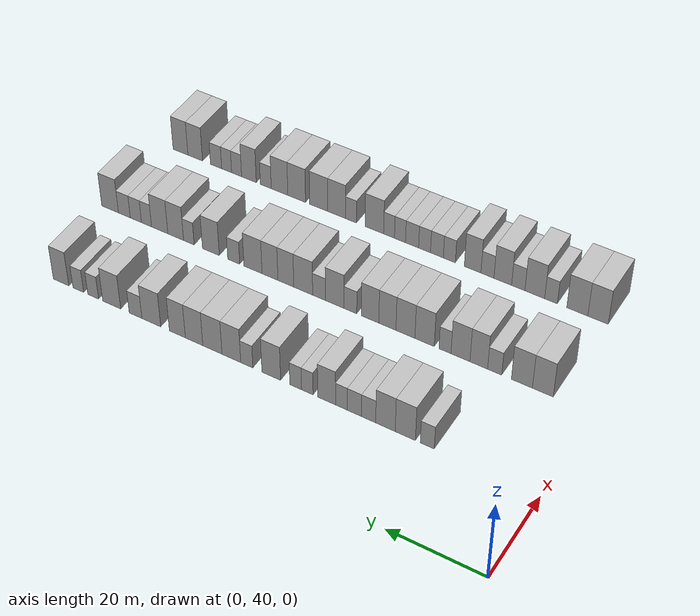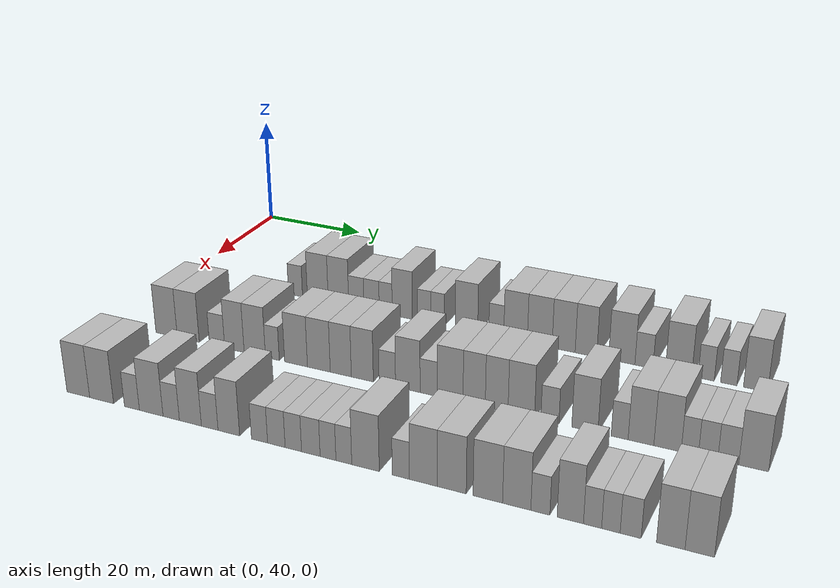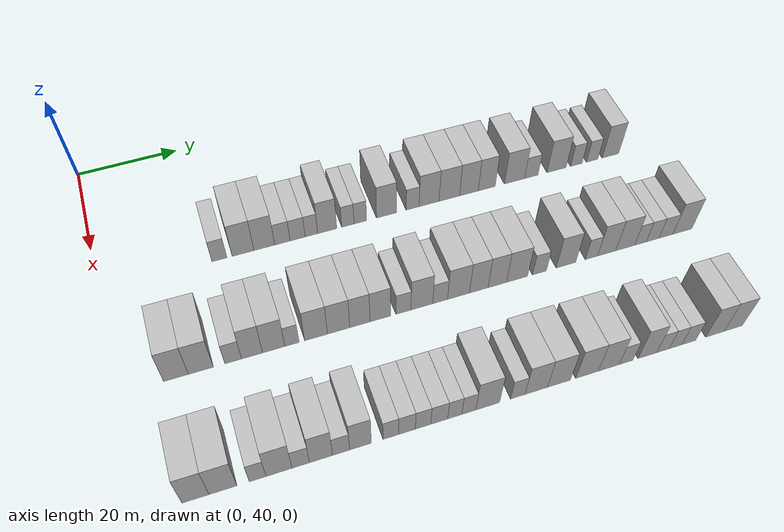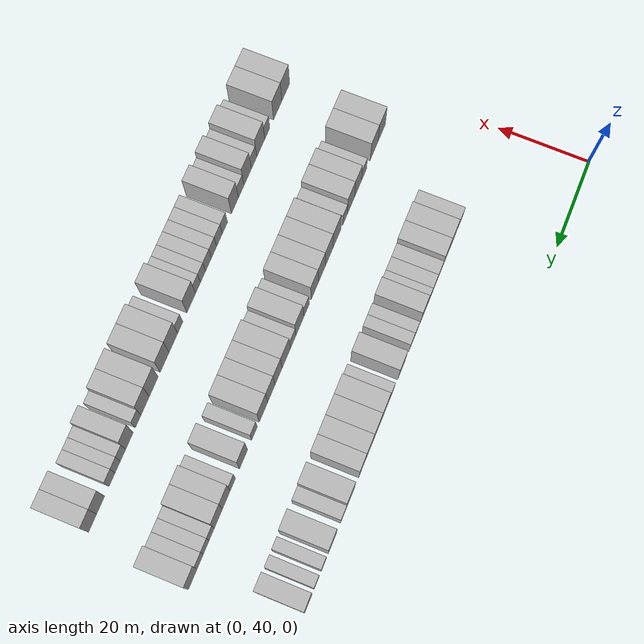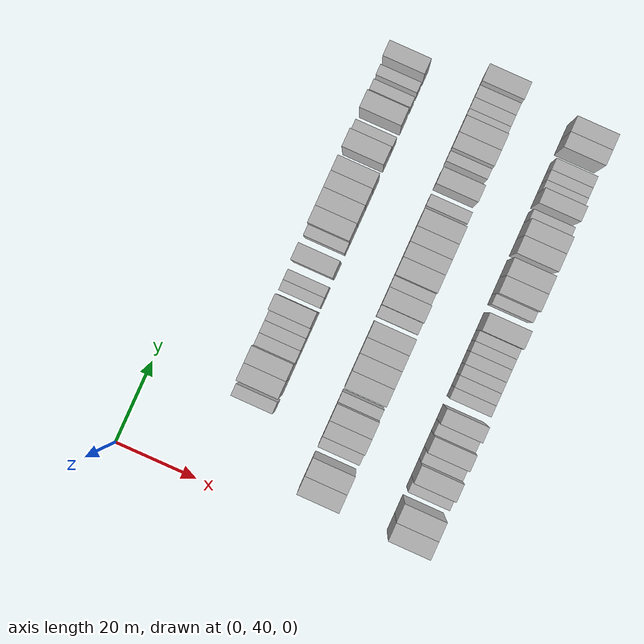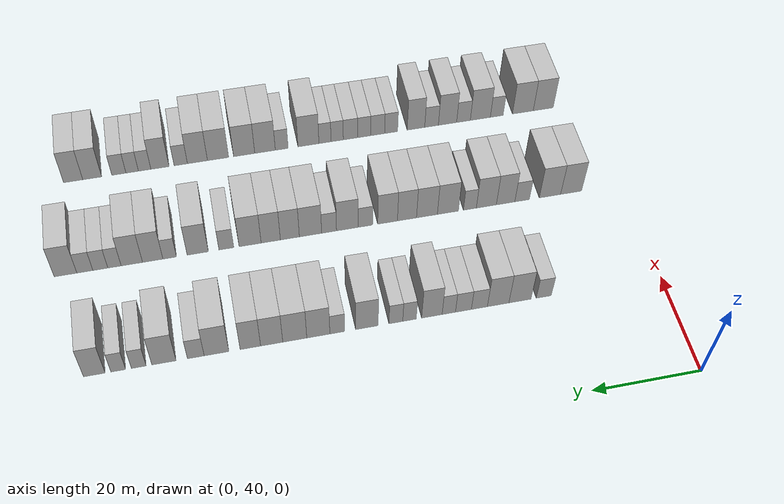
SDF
<sdf version="1.6">
 <world name="default">
  <model name="building_76">
   <static>1</static>
   <pose>25.0000 62.5603 0 0.000000 0.000000 0.000000</pose>
   <link name="link">
    <pose>0 0 3.00 0 0 0</pose>
    <collision name="collision"><geometry><box><size>10.0000 2.8568 6.0000</size></box></geometry></collision>
    <visual name="visual">
     <cast_shadows>0</cast_shadows>
     <geometry><box><size>10.0000 2.8568 6.0000</size></box></geometry>
     <material>
      <script>
       <uri>model://HANNAS_wall/materials/scripts</uri>
       <uri>model://HANNAS_wall/materials/textures</uri>
       <name>vrc/HANNAS_wall</name>
      </script>
     </material>
    </visual>
   </link>
  </model>
  <model name="building_77">
   <static>1</static>
   <pose>25.0000 67.0776 0 0.000000 0.000000 0.000000</pose>
   <link name="link">
    <pose>0 0 4.50 0 0 0</pose>
    <collision name="collision"><geometry><box><size>10.0000 4.1777 9.0000</size></box></geometry></collision>
    <visual name="visual">
     <cast_shadows>0</cast_shadows>
     <geometry><box><size>10.0000 4.1777 9.0000</size></box></geometry>
     <material>
      <script>
       <uri>model://HANNAS_wall/materials/scripts</uri>
       <uri>model://HANNAS_wall/materials/textures</uri>
       <name>vrc/HANNAS_wall</name>
      </script>
     </material>
    </visual>
   </link>
  </model>
  <model name="building_78">
   <static>1</static>
   <pose>25.0000 71.1991 0 0.000000 0.000000 0.000000</pose>
   <link name="link">
    <pose>0 0 4.50 0 0 0</pose>
    <collision name="collision"><geometry><box><size>10.0000 4.0653 9.0000</size></box></geometry></collision>
    <visual name="visual">
     <cast_shadows>0</cast_shadows>
     <geometry><box><size>10.0000 4.0653 9.0000</size></box></geometry>
     <material>
      <script>
       <uri>model://HANNAS_wall/materials/scripts</uri>
       <uri>model://HANNAS_wall/materials/textures</uri>
       <name>vrc/HANNAS_wall</name>
      </script>
     </material>
    </visual>
   </link>
  </model>
  <model name="building_79">
   <static>1</static>
   <pose>25.0000 74.7310 0 0.000000 0.000000 0.000000</pose>
   <link name="link">
    <pose>0 0 3.00 0 0 0</pose>
    <collision name="collision"><geometry><box><size>10.0000 2.9985 6.0000</size></box></geometry></collision>
    <visual name="visual">
     <cast_shadows>0</cast_shadows>
     <geometry><box><size>10.0000 2.9985 6.0000</size></box></geometry>
     <material>
      <script>
       <uri>model://HANNAS_wall/materials/scripts</uri>
       <uri>model://HANNAS_wall/materials/textures</uri>
       <name>vrc/HANNAS_wall</name>
      </script>
     </material>
    </visual>
   </link>
  </model>
  <model name="building_80">
   <static>1</static>
   <pose>25.0000 77.7164 0 0.000000 0.000000 0.000000</pose>
   <link name="link">
    <pose>0 0 3.00 0 0 0</pose>
    <collision name="collision"><geometry><box><size>10.0000 2.9722 6.0000</size></box></geometry></collision>
    <visual name="visual">
     <cast_shadows>0</cast_shadows>
     <geometry><box><size>10.0000 2.9722 6.0000</size></box></geometry>
     <material>
      <script>
       <uri>model://HANNAS_wall/materials/scripts</uri>
       <uri>model://HANNAS_wall/materials/textures</uri>
       <name>vrc/HANNAS_wall</name>
      </script>
     </material>
    </visual>
   </link>
  </model>
  <model name="building_81">
   <static>1</static>
   <pose>25.0000 80.4486 0 0.000000 0.000000 0.000000</pose>
   <link name="link">
    <pose>0 0 3.00 0 0 0</pose>
    <collision name="collision"><geometry><box><size>10.0000 2.4921 6.0000</size></box></geometry></collision>
    <visual name="visual">
     <cast_shadows>0</cast_shadows>
     <geometry><box><size>10.0000 2.4921 6.0000</size></box></geometry>
     <material>
      <script>
       <uri>model://HANNAS_wall/materials/scripts</uri>
       <uri>model://HANNAS_wall/materials/textures</uri>
       <name>vrc/HANNAS_wall</name>
      </script>
     </material>
    </visual>
   </link>
  </model>
  <model name="building_82">
   <static>1</static>
   <pose>25.0000 83.5950 0 0.000000 0.000000 0.000000</pose>
   <link name="link">
    <pose>0 0 4.50 0 0 0</pose>
    <collision name="collision"><geometry><box><size>10.0000 3.8009 9.0000</size></box></geometry></collision>
    <visual name="visual">
     <cast_shadows>0</cast_shadows>
     <geometry><box><size>10.0000 3.8009 9.0000</size></box></geometry>
     <material>
      <script>
       <uri>model://HANNAS_wall/materials/scripts</uri>
       <uri>model://HANNAS_wall/materials/textures</uri>
       <name>vrc/HANNAS_wall</name>
      </script>
     </material>
    </visual>
   </link>
  </model>
  <model name="building_83">
   <static>1</static>
   <pose>25.0000 87.7425 0 0.000000 0.000000 0.000000</pose>
   <link name="link">
    <pose>0 0 3.00 0 0 0</pose>
    <collision name="collision"><geometry><box><size>10.0000 2.4940 6.0000</size></box></geometry></collision>
    <visual name="visual">
     <cast_shadows>0</cast_shadows>
     <geometry><box><size>10.0000 2.4940 6.0000</size></box></geometry>
     <material>
      <script>
       <uri>model://HANNAS_wall/materials/scripts</uri>
       <uri>model://HANNAS_wall/materials/textures</uri>
       <name>vrc/HANNAS_wall</name>
      </script>
     </material>
    </visual>
   </link>
  </model>
  <model name="building_84">
   <static>1</static>
   <pose>25.0000 90.2645 0 0.000000 0.000000 0.000000</pose>
   <link name="link">
    <pose>0 0 3.00 0 0 0</pose>
    <collision name="collision"><geometry><box><size>10.0000 2.5501 6.0000</size></box></geometry></collision>
    <visual name="visual">
     <cast_shadows>0</cast_shadows>
     <geometry><box><size>10.0000 2.5501 6.0000</size></box></geometry>
     <material>
      <script>
       <uri>model://HANNAS_wall/materials/scripts</uri>
       <uri>model://HANNAS_wall/materials/textures</uri>
       <name>vrc/HANNAS_wall</name>
      </script>
     </material>
    </visual>
   </link>
  </model>
  <model name="building_85">
   <static>1</static>
   <pose>25.0000 95.5912 0 0.000000 0.000000 0.000000</pose>
   <link name="link">
    <pose>0 0 4.50 0 0 0</pose>
    <collision name="collision"><geometry><box><size>10.0000 4.1032 9.0000</size></box></geometry></collision>
    <visual name="visual">
     <cast_shadows>0</cast_shadows>
     <geometry><box><size>10.0000 4.1032 9.0000</size></box></geometry>
     <material>
      <script>
       <uri>model://HANNAS_wall/materials/scripts</uri>
       <uri>model://HANNAS_wall/materials/textures</uri>
       <name>vrc/HANNAS_wall</name>
      </script>
     </material>
    </visual>
   </link>
  </model>
  <model name="building_86">
   <static>1</static>
   <pose>25.0000 100.9893 0 0.000000 0.000000 0.000000</pose>
   <link name="link">
    <pose>0 0 3.00 0 0 0</pose>
    <collision name="collision"><geometry><box><size>10.0000 2.6930 6.0000</size></box></geometry></collision>
    <visual name="visual">
     <cast_shadows>0</cast_shadows>
     <geometry><box><size>10.0000 2.6930 6.0000</size></box></geometry>
     <material>
      <script>
       <uri>model://HANNAS_wall/materials/scripts</uri>
       <uri>model://HANNAS_wall/materials/textures</uri>
       <name>vrc/HANNAS_wall</name>
      </script>
     </material>
    </visual>
   </link>
  </model>
  <model name="building_87">
   <static>1</static>
   <pose>25.0000 104.4273 0 0.000000 0.000000 0.000000</pose>
   <link name="link">
    <pose>0 0 4.50 0 0 0</pose>
    <collision name="collision"><geometry><box><size>10.0000 4.1829 9.0000</size></box></geometry></collision>
    <visual name="visual">
     <cast_shadows>0</cast_shadows>
     <geometry><box><size>10.0000 4.1829 9.0000</size></box></geometry>
     <material>
      <script>
       <uri>model://HANNAS_wall/materials/scripts</uri>
       <uri>model://HANNAS_wall/materials/textures</uri>
       <name>vrc/HANNAS_wall</name>
      </script>
     </material>
    </visual>
   </link>
  </model>
  <model name="building_88">
   <static>1</static>
   <pose>25.0000 108.6854 0 0.000000 0.000000 0.000000</pose>
   <link name="link">
    <pose>0 0 4.50 0 0 0</pose>
    <collision name="collision"><geometry><box><size>10.0000 4.3335 9.0000</size></box></geometry></collision>
    <visual name="visual">
     <cast_shadows>0</cast_shadows>
     <geometry><box><size>10.0000 4.3335 9.0000</size></box></geometry>
     <material>
      <script>
       <uri>model://HANNAS_wall/materials/scripts</uri>
       <uri>model://HANNAS_wall/materials/textures</uri>
       <name>vrc/HANNAS_wall</name>
      </script>
     </material>
    </visual>
   </link>
  </model>
  <model name="building_89">
   <static>1</static>
   <pose>25.0000 112.8372 0 0.000000 0.000000 0.000000</pose>
   <link name="link">
    <pose>0 0 4.50 0 0 0</pose>
    <collision name="collision"><geometry><box><size>10.0000 3.9700 9.0000</size></box></geometry></collision>
    <visual name="visual">
     <cast_shadows>0</cast_shadows>
     <geometry><box><size>10.0000 3.9700 9.0000</size></box></geometry>
     <material>
      <script>
       <uri>model://HANNAS_wall/materials/scripts</uri>
       <uri>model://HANNAS_wall/materials/textures</uri>
       <name>vrc/HANNAS_wall</name>
      </script>
     </material>
    </visual>
   </link>
  </model>
  <model name="building_90">
   <static>1</static>
   <pose>25.0000 116.6541 0 0.000000 0.000000 0.000000</pose>
   <link name="link">
    <pose>0 0 4.50 0 0 0</pose>
    <collision name="collision"><geometry><box><size>10.0000 3.6637 9.0000</size></box></geometry></collision>
    <visual name="visual">
     <cast_shadows>0</cast_shadows>
     <geometry><box><size>10.0000 3.6637 9.0000</size></box></geometry>
     <material>
      <script>
       <uri>model://HANNAS_wall/materials/scripts</uri>
       <uri>model://HANNAS_wall/materials/textures</uri>
       <name>vrc/HANNAS_wall</name>
      </script>
     </material>
    </visual>
   </link>
  </model>
  <model name="building_91">
   <static>1</static>
   <pose>25.0000 122.6757 0 0.000000 0.000000 0.000000</pose>
   <link name="link">
    <pose>0 0 4.50 0 0 0</pose>
    <collision name="collision"><geometry><box><size>10.0000 4.3796 9.0000</size></box></geometry></collision>
    <visual name="visual">
     <cast_shadows>0</cast_shadows>
     <geometry><box><size>10.0000 4.3796 9.0000</size></box></geometry>
     <material>
      <script>
       <uri>model://HANNAS_wall/materials/scripts</uri>
       <uri>model://HANNAS_wall/materials/textures</uri>
       <name>vrc/HANNAS_wall</name>
      </script>
     </material>
    </visual>
   </link>
  </model>
  <model name="building_92">
   <static>1</static>
   <pose>25.0000 126.3511 0 0.000000 0.000000 0.000000</pose>
   <link name="link">
    <pose>0 0 3.00 0 0 0</pose>
    <collision name="collision"><geometry><box><size>10.0000 2.9712 6.0000</size></box></geometry></collision>
    <visual name="visual">
     <cast_shadows>0</cast_shadows>
     <geometry><box><size>10.0000 2.9712 6.0000</size></box></geometry>
     <material>
      <script>
       <uri>model://HANNAS_wall/materials/scripts</uri>
       <uri>model://HANNAS_wall/materials/textures</uri>
       <name>vrc/HANNAS_wall</name>
      </script>
     </material>
    </visual>
   </link>
  </model>
  <model name="building_93">
   <static>1</static>
   <pose>25.0000 131.9584 0 0.000000 0.000000 0.000000</pose>
   <link name="link">
    <pose>0 0 4.50 0 0 0</pose>
    <collision name="collision"><geometry><box><size>10.0000 4.2434 9.0000</size></box></geometry></collision>
    <visual name="visual">
     <cast_shadows>0</cast_shadows>
     <geometry><box><size>10.0000 4.2434 9.0000</size></box></geometry>
     <material>
      <script>
       <uri>model://HANNAS_wall/materials/scripts</uri>
       <uri>model://HANNAS_wall/materials/textures</uri>
       <name>vrc/HANNAS_wall</name>
      </script>
     </material>
    </visual>
   </link>
  </model>
  <model name="building_94">
   <static>1</static>
   <pose>25.0000 136.3675 0 0.000000 0.000000 0.000000</pose>
   <link name="link">
    <pose>0 0 3.00 0 0 0</pose>
    <collision name="collision"><geometry><box><size>10.0000 2.5748 6.0000</size></box></geometry></collision>
    <visual name="visual">
     <cast_shadows>0</cast_shadows>
     <geometry><box><size>10.0000 2.5748 6.0000</size></box></geometry>
     <material>
      <script>
       <uri>model://HANNAS_wall/materials/scripts</uri>
       <uri>model://HANNAS_wall/materials/textures</uri>
       <name>vrc/HANNAS_wall</name>
      </script>
     </material>
    </visual>
   </link>
  </model>
  <model name="building_95">
   <static>1</static>
   <pose>25.0000 139.9370 0 0.000000 0.000000 0.000000</pose>
   <link name="link">
    <pose>0 0 3.00 0 0 0</pose>
    <collision name="collision"><geometry><box><size>10.0000 2.5643 6.0000</size></box></geometry></collision>
    <visual name="visual">
     <cast_shadows>0</cast_shadows>
     <geometry><box><size>10.0000 2.5643 6.0000</size></box></geometry>
     <material>
      <script>
       <uri>model://HANNAS_wall/materials/scripts</uri>
       <uri>model://HANNAS_wall/materials/textures</uri>
       <name>vrc/HANNAS_wall</name>
      </script>
     </material>
    </visual>
   </link>
  </model>
  <model name="building_96">
   <static>1</static>
   <pose>25.0000 144.0904 0 0.000000 0.000000 0.000000</pose>
   <link name="link">
    <pose>0 0 4.50 0 0 0</pose>
    <collision name="collision"><geometry><box><size>10.0000 3.7425 9.0000</size></box></geometry></collision>
    <visual name="visual">
     <cast_shadows>0</cast_shadows>
     <geometry><box><size>10.0000 3.7425 9.0000</size></box></geometry>
     <material>
      <script>
       <uri>model://HANNAS_wall/materials/scripts</uri>
       <uri>model://HANNAS_wall/materials/textures</uri>
       <name>vrc/HANNAS_wall</name>
      </script>
     </material>
    </visual>
   </link>
  </model>
  <model name="building_198">
   <static>1</static>
   <pose>47.0000 50.2712 0 0.000000 0.000000 0.000000</pose>
   <link name="link">
    <pose>0 0 4.50 0 0 0</pose>
    <collision name="collision"><geometry><box><size>10.0000 4.2808 9.0000</size></box></geometry></collision>
    <visual name="visual">
     <cast_shadows>0</cast_shadows>
     <geometry><box><size>10.0000 4.2808 9.0000</size></box></geometry>
     <material>
      <script>
       <uri>model://HANNAS_wall/materials/scripts</uri>
       <uri>model://HANNAS_wall/materials/textures</uri>
       <name>vrc/HANNAS_wall</name>
      </script>
     </material>
    </visual>
   </link>
  </model>
  <model name="building_199">
   <static>1</static>
   <pose>47.0000 54.5796 0 0.000000 0.000000 0.000000</pose>
   <link name="link">
    <pose>0 0 4.50 0 0 0</pose>
    <collision name="collision"><geometry><box><size>10.0000 4.3359 9.0000</size></box></geometry></collision>
    <visual name="visual">
     <cast_shadows>0</cast_shadows>
     <geometry><box><size>10.0000 4.3359 9.0000</size></box></geometry>
     <material>
      <script>
       <uri>model://HANNAS_wall/materials/scripts</uri>
       <uri>model://HANNAS_wall/materials/textures</uri>
       <name>vrc/HANNAS_wall</name>
      </script>
     </material>
    </visual>
   </link>
  </model>
  <model name="building_200">
   <static>1</static>
   <pose>47.0000 60.2242 0 0.000000 0.000000 0.000000</pose>
   <link name="link">
    <pose>0 0 3.00 0 0 0</pose>
    <collision name="collision"><geometry><box><size>10.0000 2.9533 6.0000</size></box></geometry></collision>
    <visual name="visual">
     <cast_shadows>0</cast_shadows>
     <geometry><box><size>10.0000 2.9533 6.0000</size></box></geometry>
     <material>
      <script>
       <uri>model://HANNAS_wall/materials/scripts</uri>
       <uri>model://HANNAS_wall/materials/textures</uri>
       <name>vrc/HANNAS_wall</name>
      </script>
     </material>
    </visual>
   </link>
  </model>
  <model name="building_201">
   <static>1</static>
   <pose>47.0000 63.5598 0 0.000000 0.000000 0.000000</pose>
   <link name="link">
    <pose>0 0 4.50 0 0 0</pose>
    <collision name="collision"><geometry><box><size>10.0000 3.7180 9.0000</size></box></geometry></collision>
    <visual name="visual">
     <cast_shadows>0</cast_shadows>
     <geometry><box><size>10.0000 3.7180 9.0000</size></box></geometry>
     <material>
      <script>
       <uri>model://HANNAS_wall/materials/scripts</uri>
       <uri>model://HANNAS_wall/materials/textures</uri>
       <name>vrc/HANNAS_wall</name>
      </script>
     </material>
    </visual>
   </link>
  </model>
  <model name="building_202">
   <static>1</static>
   <pose>47.0000 67.4289 0 0.000000 0.000000 0.000000</pose>
   <link name="link">
    <pose>0 0 4.50 0 0 0</pose>
    <collision name="collision"><geometry><box><size>10.0000 4.0202 9.0000</size></box></geometry></collision>
    <visual name="visual">
     <cast_shadows>0</cast_shadows>
     <geometry><box><size>10.0000 4.0202 9.0000</size></box></geometry>
     <material>
      <script>
       <uri>model://HANNAS_wall/materials/scripts</uri>
       <uri>model://HANNAS_wall/materials/textures</uri>
       <name>vrc/HANNAS_wall</name>
      </script>
     </material>
    </visual>
   </link>
  </model>
  <model name="building_203">
   <static>1</static>
   <pose>47.0000 70.7279 0 0.000000 0.000000 0.000000</pose>
   <link name="link">
    <pose>0 0 3.00 0 0 0</pose>
    <collision name="collision"><geometry><box><size>10.0000 2.5777 6.0000</size></box></geometry></collision>
    <visual name="visual">
     <cast_shadows>0</cast_shadows>
     <geometry><box><size>10.0000 2.5777 6.0000</size></box></geometry>
     <material>
      <script>
       <uri>model://HANNAS_wall/materials/scripts</uri>
       <uri>model://HANNAS_wall/materials/textures</uri>
       <name>vrc/HANNAS_wall</name>
      </script>
     </material>
    </visual>
   </link>
  </model>
  <model name="building_204">
   <static>1</static>
   <pose>47.0000 75.1073 0 0.000000 0.000000 0.000000</pose>
   <link name="link">
    <pose>0 0 4.50 0 0 0</pose>
    <collision name="collision"><geometry><box><size>10.0000 4.1811 9.0000</size></box></geometry></collision>
    <visual name="visual">
     <cast_shadows>0</cast_shadows>
     <geometry><box><size>10.0000 4.1811 9.0000</size></box></geometry>
     <material>
      <script>
       <uri>model://HANNAS_wall/materials/scripts</uri>
       <uri>model://HANNAS_wall/materials/textures</uri>
       <name>vrc/HANNAS_wall</name>
      </script>
     </material>
    </visual>
   </link>
  </model>
  <model name="building_205">
   <static>1</static>
   <pose>47.0000 79.2622 0 0.000000 0.000000 0.000000</pose>
   <link name="link">
    <pose>0 0 4.50 0 0 0</pose>
    <collision name="collision"><geometry><box><size>10.0000 4.1287 9.0000</size></box></geometry></collision>
    <visual name="visual">
     <cast_shadows>0</cast_shadows>
     <geometry><box><size>10.0000 4.1287 9.0000</size></box></geometry>
     <material>
      <script>
       <uri>model://HANNAS_wall/materials/scripts</uri>
       <uri>model://HANNAS_wall/materials/textures</uri>
       <name>vrc/HANNAS_wall</name>
      </script>
     </material>
    </visual>
   </link>
  </model>
  <model name="building_206">
   <static>1</static>
   <pose>47.0000 83.2075 0 0.000000 0.000000 0.000000</pose>
   <link name="link">
    <pose>0 0 4.50 0 0 0</pose>
    <collision name="collision"><geometry><box><size>10.0000 3.7619 9.0000</size></box></geometry></collision>
    <visual name="visual">
     <cast_shadows>0</cast_shadows>
     <geometry><box><size>10.0000 3.7619 9.0000</size></box></geometry>
     <material>
      <script>
       <uri>model://HANNAS_wall/materials/scripts</uri>
       <uri>model://HANNAS_wall/materials/textures</uri>
       <name>vrc/HANNAS_wall</name>
      </script>
     </material>
    </visual>
   </link>
  </model>
  <model name="building_207">
   <static>1</static>
   <pose>47.0000 87.0256 0 0.000000 0.000000 0.000000</pose>
   <link name="link">
    <pose>0 0 4.50 0 0 0</pose>
    <collision name="collision"><geometry><box><size>10.0000 3.8742 9.0000</size></box></geometry></collision>
    <visual name="visual">
     <cast_shadows>0</cast_shadows>
     <geometry><box><size>10.0000 3.8742 9.0000</size></box></geometry>
     <material>
      <script>
       <uri>model://HANNAS_wall/materials/scripts</uri>
       <uri>model://HANNAS_wall/materials/textures</uri>
       <name>vrc/HANNAS_wall</name>
      </script>
     </material>
    </visual>
   </link>
  </model>
  <model name="building_208">
   <static>1</static>
   <pose>47.0000 91.3842 0 0.000000 0.000000 0.000000</pose>
   <link name="link">
    <pose>0 0 3.00 0 0 0</pose>
    <collision name="collision"><geometry><box><size>10.0000 2.8431 6.0000</size></box></geometry></collision>
    <visual name="visual">
     <cast_shadows>0</cast_shadows>
     <geometry><box><size>10.0000 2.8431 6.0000</size></box></geometry>
     <material>
      <script>
       <uri>model://HANNAS_wall/materials/scripts</uri>
       <uri>model://HANNAS_wall/materials/textures</uri>
       <name>vrc/HANNAS_wall</name>
      </script>
     </material>
    </visual>
   </link>
  </model>
  <model name="building_209">
   <static>1</static>
   <pose>47.0000 94.9020 0 0.000000 0.000000 0.000000</pose>
   <link name="link">
    <pose>0 0 4.50 0 0 0</pose>
    <collision name="collision"><geometry><box><size>10.0000 4.1925 9.0000</size></box></geometry></collision>
    <visual name="visual">
     <cast_shadows>0</cast_shadows>
     <geometry><box><size>10.0000 4.1925 9.0000</size></box></geometry>
     <material>
      <script>
       <uri>model://HANNAS_wall/materials/scripts</uri>
       <uri>model://HANNAS_wall/materials/textures</uri>
       <name>vrc/HANNAS_wall</name>
      </script>
     </material>
    </visual>
   </link>
  </model>
  <model name="building_210">
   <static>1</static>
   <pose>47.0000 98.4341 0 0.000000 0.000000 0.000000</pose>
   <link name="link">
    <pose>0 0 3.00 0 0 0</pose>
    <collision name="collision"><geometry><box><size>10.0000 2.8716 6.0000</size></box></geometry></collision>
    <visual name="visual">
     <cast_shadows>0</cast_shadows>
     <geometry><box><size>10.0000 2.8716 6.0000</size></box></geometry>
     <material>
      <script>
       <uri>model://HANNAS_wall/materials/scripts</uri>
       <uri>model://HANNAS_wall/materials/textures</uri>
       <name>vrc/HANNAS_wall</name>
      </script>
     </material>
    </visual>
   </link>
  </model>
  <model name="building_211">
   <static>1</static>
   <pose>47.0000 102.0206 0 0.000000 0.000000 0.000000</pose>
   <link name="link">
    <pose>0 0 4.50 0 0 0</pose>
    <collision name="collision"><geometry><box><size>10.0000 4.3014 9.0000</size></box></geometry></collision>
    <visual name="visual">
     <cast_shadows>0</cast_shadows>
     <geometry><box><size>10.0000 4.3014 9.0000</size></box></geometry>
     <material>
      <script>
       <uri>model://HANNAS_wall/materials/scripts</uri>
       <uri>model://HANNAS_wall/materials/textures</uri>
       <name>vrc/HANNAS_wall</name>
      </script>
     </material>
    </visual>
   </link>
  </model>
  <model name="building_212">
   <static>1</static>
   <pose>47.0000 105.9963 0 0.000000 0.000000 0.000000</pose>
   <link name="link">
    <pose>0 0 4.50 0 0 0</pose>
    <collision name="collision"><geometry><box><size>10.0000 3.6499 9.0000</size></box></geometry></collision>
    <visual name="visual">
     <cast_shadows>0</cast_shadows>
     <geometry><box><size>10.0000 3.6499 9.0000</size></box></geometry>
     <material>
      <script>
       <uri>model://HANNAS_wall/materials/scripts</uri>
       <uri>model://HANNAS_wall/materials/textures</uri>
       <name>vrc/HANNAS_wall</name>
      </script>
     </material>
    </visual>
   </link>
  </model>
  <model name="building_213">
   <static>1</static>
   <pose>47.0000 109.6597 0 0.000000 0.000000 0.000000</pose>
   <link name="link">
    <pose>0 0 4.50 0 0 0</pose>
    <collision name="collision"><geometry><box><size>10.0000 3.6769 9.0000</size></box></geometry></collision>
    <visual name="visual">
     <cast_shadows>0</cast_shadows>
     <geometry><box><size>10.0000 3.6769 9.0000</size></box></geometry>
     <material>
      <script>
       <uri>model://HANNAS_wall/materials/scripts</uri>
       <uri>model://HANNAS_wall/materials/textures</uri>
       <name>vrc/HANNAS_wall</name>
      </script>
     </material>
    </visual>
   </link>
  </model>
  <model name="building_214">
   <static>1</static>
   <pose>47.0000 113.6049 0 0.000000 0.000000 0.000000</pose>
   <link name="link">
    <pose>0 0 4.50 0 0 0</pose>
    <collision name="collision"><geometry><box><size>10.0000 4.2136 9.0000</size></box></geometry></collision>
    <visual name="visual">
     <cast_shadows>0</cast_shadows>
     <geometry><box><size>10.0000 4.2136 9.0000</size></box></geometry>
     <material>
      <script>
       <uri>model://HANNAS_wall/materials/scripts</uri>
       <uri>model://HANNAS_wall/materials/textures</uri>
       <name>vrc/HANNAS_wall</name>
      </script>
     </material>
    </visual>
   </link>
  </model>
  <model name="building_215">
   <static>1</static>
   <pose>47.0000 118.1214 0 0.000000 0.000000 0.000000</pose>
   <link name="link">
    <pose>0 0 3.00 0 0 0</pose>
    <collision name="collision"><geometry><box><size>10.0000 2.8193 6.0000</size></box></geometry></collision>
    <visual name="visual">
     <cast_shadows>0</cast_shadows>
     <geometry><box><size>10.0000 2.8193 6.0000</size></box></geometry>
     <material>
      <script>
       <uri>model://HANNAS_wall/materials/scripts</uri>
       <uri>model://HANNAS_wall/materials/textures</uri>
       <name>vrc/HANNAS_wall</name>
      </script>
     </material>
    </visual>
   </link>
  </model>
  <model name="building_216">
   <static>1</static>
   <pose>47.0000 123.5318 0 0.000000 0.000000 0.000000</pose>
   <link name="link">
    <pose>0 0 4.50 0 0 0</pose>
    <collision name="collision"><geometry><box><size>10.0000 4.0014 9.0000</size></box></geometry></collision>
    <visual name="visual">
     <cast_shadows>0</cast_shadows>
     <geometry><box><size>10.0000 4.0014 9.0000</size></box></geometry>
     <material>
      <script>
       <uri>model://HANNAS_wall/materials/scripts</uri>
       <uri>model://HANNAS_wall/materials/textures</uri>
       <name>vrc/HANNAS_wall</name>
      </script>
     </material>
    </visual>
   </link>
  </model>
  <model name="building_217">
   <static>1</static>
   <pose>47.0000 128.8042 0 0.000000 0.000000 0.000000</pose>
   <link name="link">
    <pose>0 0 3.00 0 0 0</pose>
    <collision name="collision"><geometry><box><size>10.0000 2.5435 6.0000</size></box></geometry></collision>
    <visual name="visual">
     <cast_shadows>0</cast_shadows>
     <geometry><box><size>10.0000 2.5435 6.0000</size></box></geometry>
     <material>
      <script>
       <uri>model://HANNAS_wall/materials/scripts</uri>
       <uri>model://HANNAS_wall/materials/textures</uri>
       <name>vrc/HANNAS_wall</name>
      </script>
     </material>
    </visual>
   </link>
  </model>
  <model name="building_218">
   <static>1</static>
   <pose>47.0000 131.9804 0 0.000000 0.000000 0.000000</pose>
   <link name="link">
    <pose>0 0 4.50 0 0 0</pose>
    <collision name="collision"><geometry><box><size>10.0000 3.8088 9.0000</size></box></geometry></collision>
    <visual name="visual">
     <cast_shadows>0</cast_shadows>
     <geometry><box><size>10.0000 3.8088 9.0000</size></box></geometry>
     <material>
      <script>
       <uri>model://HANNAS_wall/materials/scripts</uri>
       <uri>model://HANNAS_wall/materials/textures</uri>
       <name>vrc/HANNAS_wall</name>
      </script>
     </material>
    </visual>
   </link>
  </model>
  <model name="building_219">
   <static>1</static>
   <pose>47.0000 135.8739 0 0.000000 0.000000 0.000000</pose>
   <link name="link">
    <pose>0 0 4.50 0 0 0</pose>
    <collision name="collision"><geometry><box><size>10.0000 3.9782 9.0000</size></box></geometry></collision>
    <visual name="visual">
     <cast_shadows>0</cast_shadows>
     <geometry><box><size>10.0000 3.9782 9.0000</size></box></geometry>
     <material>
      <script>
       <uri>model://HANNAS_wall/materials/scripts</uri>
       <uri>model://HANNAS_wall/materials/textures</uri>
       <name>vrc/HANNAS_wall</name>
      </script>
     </material>
    </visual>
   </link>
  </model>
  <model name="building_220">
   <static>1</static>
   <pose>47.0000 139.0991 0 0.000000 0.000000 0.000000</pose>
   <link name="link">
    <pose>0 0 3.00 0 0 0</pose>
    <collision name="collision"><geometry><box><size>10.0000 2.4723 6.0000</size></box></geometry></collision>
    <visual name="visual">
     <cast_shadows>0</cast_shadows>
     <geometry><box><size>10.0000 2.4723 6.0000</size></box></geometry>
     <material>
      <script>
       <uri>model://HANNAS_wall/materials/scripts</uri>
       <uri>model://HANNAS_wall/materials/textures</uri>
       <name>vrc/HANNAS_wall</name>
      </script>
     </material>
    </visual>
   </link>
  </model>
  <model name="building_221">
   <static>1</static>
   <pose>47.0000 141.7178 0 0.000000 0.000000 0.000000</pose>
   <link name="link">
    <pose>0 0 3.00 0 0 0</pose>
    <collision name="collision"><geometry><box><size>10.0000 2.7651 6.0000</size></box></geometry></collision>
    <visual name="visual">
     <cast_shadows>0</cast_shadows>
     <geometry><box><size>10.0000 2.7651 6.0000</size></box></geometry>
     <material>
      <script>
       <uri>model://HANNAS_wall/materials/scripts</uri>
       <uri>model://HANNAS_wall/materials/textures</uri>
       <name>vrc/HANNAS_wall</name>
      </script>
     </material>
    </visual>
   </link>
  </model>
  <model name="building_222">
   <static>1</static>
   <pose>47.0000 144.5724 0 0.000000 0.000000 0.000000</pose>
   <link name="link">
    <pose>0 0 3.00 0 0 0</pose>
    <collision name="collision"><geometry><box><size>10.0000 2.9441 6.0000</size></box></geometry></collision>
    <visual name="visual">
     <cast_shadows>0</cast_shadows>
     <geometry><box><size>10.0000 2.9441 6.0000</size></box></geometry>
     <material>
      <script>
       <uri>model://HANNAS_wall/materials/scripts</uri>
       <uri>model://HANNAS_wall/materials/textures</uri>
       <name>vrc/HANNAS_wall</name>
      </script>
     </material>
    </visual>
   </link>
  </model>
  <model name="building_223">
   <static>1</static>
   <pose>47.0000 148.1218 0 0.000000 0.000000 0.000000</pose>
   <link name="link">
    <pose>0 0 4.50 0 0 0</pose>
    <collision name="collision"><geometry><box><size>10.0000 4.1545 9.0000</size></box></geometry></collision>
    <visual name="visual">
     <cast_shadows>0</cast_shadows>
     <geometry><box><size>10.0000 4.1545 9.0000</size></box></geometry>
     <material>
      <script>
       <uri>model://HANNAS_wall/materials/scripts</uri>
       <uri>model://HANNAS_wall/materials/textures</uri>
       <name>vrc/HANNAS_wall</name>
      </script>
     </material>
    </visual>
   </link>
  </model>
  <model name="building_318">
   <static>1</static>
   <pose>69.0000 49.2408 0 0.000000 0.000000 0.000000</pose>
   <link name="link">
    <pose>0 0 4.50 0 0 0</pose>
    <collision name="collision"><geometry><box><size>10.0000 4.2988 9.0000</size></box></geometry></collision>
    <visual name="visual">
     <cast_shadows>0</cast_shadows>
     <geometry><box><size>10.0000 4.2988 9.0000</size></box></geometry>
     <material>
      <script>
       <uri>model://HANNAS_wall/materials/scripts</uri>
       <uri>model://HANNAS_wall/materials/textures</uri>
       <name>vrc/HANNAS_wall</name>
      </script>
     </material>
    </visual>
   </link>
  </model>
  <model name="building_319">
   <static>1</static>
   <pose>69.0000 53.6218 0 0.000000 0.000000 0.000000</pose>
   <link name="link">
    <pose>0 0 4.50 0 0 0</pose>
    <collision name="collision"><geometry><box><size>10.0000 4.4633 9.0000</size></box></geometry></collision>
    <visual name="visual">
     <cast_shadows>0</cast_shadows>
     <geometry><box><size>10.0000 4.4633 9.0000</size></box></geometry>
     <material>
      <script>
       <uri>model://HANNAS_wall/materials/scripts</uri>
       <uri>model://HANNAS_wall/materials/textures</uri>
       <name>vrc/HANNAS_wall</name>
      </script>
     </material>
    </visual>
   </link>
  </model>
  <model name="building_320">
   <static>1</static>
   <pose>69.0000 59.2174 0 0.000000 0.000000 0.000000</pose>
   <link name="link">
    <pose>0 0 3.00 0 0 0</pose>
    <collision name="collision"><geometry><box><size>10.0000 2.7277 6.0000</size></box></geometry></collision>
    <visual name="visual">
     <cast_shadows>0</cast_shadows>
     <geometry><box><size>10.0000 2.7277 6.0000</size></box></geometry>
     <material>
      <script>
       <uri>model://HANNAS_wall/materials/scripts</uri>
       <uri>model://HANNAS_wall/materials/textures</uri>
       <name>vrc/HANNAS_wall</name>
      </script>
     </material>
    </visual>
   </link>
  </model>
  <model name="building_321">
   <static>1</static>
   <pose>69.0000 62.7142 0 0.000000 0.000000 0.000000</pose>
   <link name="link">
    <pose>0 0 4.50 0 0 0</pose>
    <collision name="collision"><geometry><box><size>10.0000 4.2658 9.0000</size></box></geometry></collision>
    <visual name="visual">
     <cast_shadows>0</cast_shadows>
     <geometry><box><size>10.0000 4.2658 9.0000</size></box></geometry>
     <material>
      <script>
       <uri>model://HANNAS_wall/materials/scripts</uri>
       <uri>model://HANNAS_wall/materials/textures</uri>
       <name>vrc/HANNAS_wall</name>
      </script>
     </material>
    </visual>
   </link>
  </model>
  <model name="building_322">
   <static>1</static>
   <pose>69.0000 66.2957 0 0.000000 0.000000 0.000000</pose>
   <link name="link">
    <pose>0 0 3.00 0 0 0</pose>
    <collision name="collision"><geometry><box><size>10.0000 2.8972 6.0000</size></box></geometry></collision>
    <visual name="visual">
     <cast_shadows>0</cast_shadows>
     <geometry><box><size>10.0000 2.8972 6.0000</size></box></geometry>
     <material>
      <script>
       <uri>model://HANNAS_wall/materials/scripts</uri>
       <uri>model://HANNAS_wall/materials/textures</uri>
       <name>vrc/HANNAS_wall</name>
      </script>
     </material>
    </visual>
   </link>
  </model>
  <model name="building_323">
   <static>1</static>
   <pose>69.0000 69.6742 0 0.000000 0.000000 0.000000</pose>
   <link name="link">
    <pose>0 0 4.50 0 0 0</pose>
    <collision name="collision"><geometry><box><size>10.0000 3.8598 9.0000</size></box></geometry></collision>
    <visual name="visual">
     <cast_shadows>0</cast_shadows>
     <geometry><box><size>10.0000 3.8598 9.0000</size></box></geometry>
     <material>
      <script>
       <uri>model://HANNAS_wall/materials/scripts</uri>
       <uri>model://HANNAS_wall/materials/textures</uri>
       <name>vrc/HANNAS_wall</name>
      </script>
     </material>
    </visual>
   </link>
  </model>
  <model name="building_324">
   <static>1</static>
   <pose>69.0000 73.0458 0 0.000000 0.000000 0.000000</pose>
   <link name="link">
    <pose>0 0 3.00 0 0 0</pose>
    <collision name="collision"><geometry><box><size>10.0000 2.8834 6.0000</size></box></geometry></collision>
    <visual name="visual">
     <cast_shadows>0</cast_shadows>
     <geometry><box><size>10.0000 2.8834 6.0000</size></box></geometry>
     <material>
      <script>
       <uri>model://HANNAS_wall/materials/scripts</uri>
       <uri>model://HANNAS_wall/materials/textures</uri>
       <name>vrc/HANNAS_wall</name>
      </script>
     </material>
    </visual>
   </link>
  </model>
  <model name="building_325">
   <static>1</static>
   <pose>69.0000 76.3289 0 0.000000 0.000000 0.000000</pose>
   <link name="link">
    <pose>0 0 4.50 0 0 0</pose>
    <collision name="collision"><geometry><box><size>10.0000 3.6828 9.0000</size></box></geometry></collision>
    <visual name="visual">
     <cast_shadows>0</cast_shadows>
     <geometry><box><size>10.0000 3.6828 9.0000</size></box></geometry>
     <material>
      <script>
       <uri>model://HANNAS_wall/materials/scripts</uri>
       <uri>model://HANNAS_wall/materials/textures</uri>
       <name>vrc/HANNAS_wall</name>
      </script>
     </material>
    </visual>
   </link>
  </model>
  <model name="building_326">
   <static>1</static>
   <pose>69.0000 81.5208 0 0.000000 0.000000 0.000000</pose>
   <link name="link">
    <pose>0 0 3.00 0 0 0</pose>
    <collision name="collision"><geometry><box><size>10.0000 2.7011 6.0000</size></box></geometry></collision>
    <visual name="visual">
     <cast_shadows>0</cast_shadows>
     <geometry><box><size>10.0000 2.7011 6.0000</size></box></geometry>
     <material>
      <script>
       <uri>model://HANNAS_wall/materials/scripts</uri>
       <uri>model://HANNAS_wall/materials/textures</uri>
       <name>vrc/HANNAS_wall</name>
      </script>
     </material>
    </visual>
   </link>
  </model>
  <model name="building_327">
   <static>1</static>
   <pose>69.0000 84.3210 0 0.000000 0.000000 0.000000</pose>
   <link name="link">
    <pose>0 0 3.00 0 0 0</pose>
    <collision name="collision"><geometry><box><size>10.0000 2.8994 6.0000</size></box></geometry></collision>
    <visual name="visual">
     <cast_shadows>0</cast_shadows>
     <geometry><box><size>10.0000 2.8994 6.0000</size></box></geometry>
     <material>
      <script>
       <uri>model://HANNAS_wall/materials/scripts</uri>
       <uri>model://HANNAS_wall/materials/textures</uri>
       <name>vrc/HANNAS_wall</name>
      </script>
     </material>
    </visual>
   </link>
  </model>
  <model name="building_328">
   <static>1</static>
   <pose>69.0000 87.1158 0 0.000000 0.000000 0.000000</pose>
   <link name="link">
    <pose>0 0 3.00 0 0 0</pose>
    <collision name="collision"><geometry><box><size>10.0000 2.6901 6.0000</size></box></geometry></collision>
    <visual name="visual">
     <cast_shadows>0</cast_shadows>
     <geometry><box><size>10.0000 2.6901 6.0000</size></box></geometry>
     <material>
      <script>
       <uri>model://HANNAS_wall/materials/scripts</uri>
       <uri>model://HANNAS_wall/materials/textures</uri>
       <name>vrc/HANNAS_wall</name>
      </script>
     </material>
    </visual>
   </link>
  </model>
  <model name="building_329">
   <static>1</static>
   <pose>69.0000 89.9580 0 0.000000 0.000000 0.000000</pose>
   <link name="link">
    <pose>0 0 3.00 0 0 0</pose>
    <collision name="collision"><geometry><box><size>10.0000 2.9943 6.0000</size></box></geometry></collision>
    <visual name="visual">
     <cast_shadows>0</cast_shadows>
     <geometry><box><size>10.0000 2.9943 6.0000</size></box></geometry>
     <material>
      <script>
       <uri>model://HANNAS_wall/materials/scripts</uri>
       <uri>model://HANNAS_wall/materials/textures</uri>
       <name>vrc/HANNAS_wall</name>
      </script>
     </material>
    </visual>
   </link>
  </model>
  <model name="building_330">
   <static>1</static>
   <pose>69.0000 92.7186 0 0.000000 0.000000 0.000000</pose>
   <link name="link">
    <pose>0 0 3.00 0 0 0</pose>
    <collision name="collision"><geometry><box><size>10.0000 2.5269 6.0000</size></box></geometry></collision>
    <visual name="visual">
     <cast_shadows>0</cast_shadows>
     <geometry><box><size>10.0000 2.5269 6.0000</size></box></geometry>
     <material>
      <script>
       <uri>model://HANNAS_wall/materials/scripts</uri>
       <uri>model://HANNAS_wall/materials/textures</uri>
       <name>vrc/HANNAS_wall</name>
      </script>
     </material>
    </visual>
   </link>
  </model>
  <model name="building_331">
   <static>1</static>
   <pose>69.0000 95.2323 0 0.000000 0.000000 0.000000</pose>
   <link name="link">
    <pose>0 0 3.00 0 0 0</pose>
    <collision name="collision"><geometry><box><size>10.0000 2.5004 6.0000</size></box></geometry></collision>
    <visual name="visual">
     <cast_shadows>0</cast_shadows>
     <geometry><box><size>10.0000 2.5004 6.0000</size></box></geometry>
     <material>
      <script>
       <uri>model://HANNAS_wall/materials/scripts</uri>
       <uri>model://HANNAS_wall/materials/textures</uri>
       <name>vrc/HANNAS_wall</name>
      </script>
     </material>
    </visual>
   </link>
  </model>
  <model name="building_332">
   <static>1</static>
   <pose>69.0000 98.6297 0 0.000000 0.000000 0.000000</pose>
   <link name="link">
    <pose>0 0 4.50 0 0 0</pose>
    <collision name="collision"><geometry><box><size>10.0000 4.2944 9.0000</size></box></geometry></collision>
    <visual name="visual">
     <cast_shadows>0</cast_shadows>
     <geometry><box><size>10.0000 4.2944 9.0000</size></box></geometry>
     <material>
      <script>
       <uri>model://HANNAS_wall/materials/scripts</uri>
       <uri>model://HANNAS_wall/materials/textures</uri>
       <name>vrc/HANNAS_wall</name>
      </script>
     </material>
    </visual>
   </link>
  </model>
  <model name="building_333">
   <static>1</static>
   <pose>69.0000 104.0850 0 0.000000 0.000000 0.000000</pose>
   <link name="link">
    <pose>0 0 3.00 0 0 0</pose>
    <collision name="collision"><geometry><box><size>10.0000 2.6162 6.0000</size></box></geometry></collision>
    <visual name="visual">
     <cast_shadows>0</cast_shadows>
     <geometry><box><size>10.0000 2.6162 6.0000</size></box></geometry>
     <material>
      <script>
       <uri>model://HANNAS_wall/materials/scripts</uri>
       <uri>model://HANNAS_wall/materials/textures</uri>
       <name>vrc/HANNAS_wall</name>
      </script>
     </material>
    </visual>
   </link>
  </model>
  <model name="building_334">
   <static>1</static>
   <pose>69.0000 107.4812 0 0.000000 0.000000 0.000000</pose>
   <link name="link">
    <pose>0 0 4.50 0 0 0</pose>
    <collision name="collision"><geometry><box><size>10.0000 4.1763 9.0000</size></box></geometry></collision>
    <visual name="visual">
     <cast_shadows>0</cast_shadows>
     <geometry><box><size>10.0000 4.1763 9.0000</size></box></geometry>
     <material>
      <script>
       <uri>model://HANNAS_wall/materials/scripts</uri>
       <uri>model://HANNAS_wall/materials/textures</uri>
       <name>vrc/HANNAS_wall</name>
      </script>
     </material>
    </visual>
   </link>
  </model>
  <model name="building_335">
   <static>1</static>
   <pose>69.0000 111.7121 0 0.000000 0.000000 0.000000</pose>
   <link name="link">
    <pose>0 0 4.50 0 0 0</pose>
    <collision name="collision"><geometry><box><size>10.0000 4.2855 9.0000</size></box></geometry></collision>
    <visual name="visual">
     <cast_shadows>0</cast_shadows>
     <geometry><box><size>10.0000 4.2855 9.0000</size></box></geometry>
     <material>
      <script>
       <uri>model://HANNAS_wall/materials/scripts</uri>
       <uri>model://HANNAS_wall/materials/textures</uri>
       <name>vrc/HANNAS_wall</name>
      </script>
     </material>
    </visual>
   </link>
  </model>
  <model name="building_336">
   <static>1</static>
   <pose>69.0000 116.9866 0 0.000000 0.000000 0.000000</pose>
   <link name="link">
    <pose>0 0 4.50 0 0 0</pose>
    <collision name="collision"><geometry><box><size>10.0000 4.2634 9.0000</size></box></geometry></collision>
    <visual name="visual">
     <cast_shadows>0</cast_shadows>
     <geometry><box><size>10.0000 4.2634 9.0000</size></box></geometry>
     <material>
      <script>
       <uri>model://HANNAS_wall/materials/scripts</uri>
       <uri>model://HANNAS_wall/materials/textures</uri>
       <name>vrc/HANNAS_wall</name>
      </script>
     </material>
    </visual>
   </link>
  </model>
  <model name="building_337">
   <static>1</static>
   <pose>69.0000 121.1238 0 0.000000 0.000000 0.000000</pose>
   <link name="link">
    <pose>0 0 4.50 0 0 0</pose>
    <collision name="collision"><geometry><box><size>10.0000 4.0110 9.0000</size></box></geometry></collision>
    <visual name="visual">
     <cast_shadows>0</cast_shadows>
     <geometry><box><size>10.0000 4.0110 9.0000</size></box></geometry>
     <material>
      <script>
       <uri>model://HANNAS_wall/materials/scripts</uri>
       <uri>model://HANNAS_wall/materials/textures</uri>
       <name>vrc/HANNAS_wall</name>
      </script>
     </material>
    </visual>
   </link>
  </model>
  <model name="building_338">
   <static>1</static>
   <pose>69.0000 124.4589 0 0.000000 0.000000 0.000000</pose>
   <link name="link">
    <pose>0 0 3.00 0 0 0</pose>
    <collision name="collision"><geometry><box><size>10.0000 2.6592 6.0000</size></box></geometry></collision>
    <visual name="visual">
     <cast_shadows>0</cast_shadows>
     <geometry><box><size>10.0000 2.6592 6.0000</size></box></geometry>
     <material>
      <script>
       <uri>model://HANNAS_wall/materials/scripts</uri>
       <uri>model://HANNAS_wall/materials/textures</uri>
       <name>vrc/HANNAS_wall</name>
      </script>
     </material>
    </visual>
   </link>
  </model>
  <model name="building_339">
   <static>1</static>
   <pose>69.0000 128.5983 0 0.000000 0.000000 0.000000</pose>
   <link name="link">
    <pose>0 0 4.50 0 0 0</pose>
    <collision name="collision"><geometry><box><size>10.0000 3.6196 9.0000</size></box></geometry></collision>
    <visual name="visual">
     <cast_shadows>0</cast_shadows>
     <geometry><box><size>10.0000 3.6196 9.0000</size></box></geometry>
     <material>
      <script>
       <uri>model://HANNAS_wall/materials/scripts</uri>
       <uri>model://HANNAS_wall/materials/textures</uri>
       <name>vrc/HANNAS_wall</name>
      </script>
     </material>
    </visual>
   </link>
  </model>
  <model name="building_340">
   <static>1</static>
   <pose>69.0000 131.6372 0 0.000000 0.000000 0.000000</pose>
   <link name="link">
    <pose>0 0 3.00 0 0 0</pose>
    <collision name="collision"><geometry><box><size>10.0000 2.4582 6.0000</size></box></geometry></collision>
    <visual name="visual">
     <cast_shadows>0</cast_shadows>
     <geometry><box><size>10.0000 2.4582 6.0000</size></box></geometry>
     <material>
      <script>
       <uri>model://HANNAS_wall/materials/scripts</uri>
       <uri>model://HANNAS_wall/materials/textures</uri>
       <name>vrc/HANNAS_wall</name>
      </script>
     </material>
    </visual>
   </link>
  </model>
  <model name="building_341">
   <static>1</static>
   <pose>69.0000 134.1058 0 0.000000 0.000000 0.000000</pose>
   <link name="link">
    <pose>0 0 3.00 0 0 0</pose>
    <collision name="collision"><geometry><box><size>10.0000 2.4791 6.0000</size></box></geometry></collision>
    <visual name="visual">
     <cast_shadows>0</cast_shadows>
     <geometry><box><size>10.0000 2.4791 6.0000</size></box></geometry>
     <material>
      <script>
       <uri>model://HANNAS_wall/materials/scripts</uri>
       <uri>model://HANNAS_wall/materials/textures</uri>
       <name>vrc/HANNAS_wall</name>
      </script>
     </material>
    </visual>
   </link>
  </model>
  <model name="building_342">
   <static>1</static>
   <pose>69.0000 136.7387 0 0.000000 0.000000 0.000000</pose>
   <link name="link">
    <pose>0 0 3.00 0 0 0</pose>
    <collision name="collision"><geometry><box><size>10.0000 2.7866 6.0000</size></box></geometry></collision>
    <visual name="visual">
     <cast_shadows>0</cast_shadows>
     <geometry><box><size>10.0000 2.7866 6.0000</size></box></geometry>
     <material>
      <script>
       <uri>model://HANNAS_wall/materials/scripts</uri>
       <uri>model://HANNAS_wall/materials/textures</uri>
       <name>vrc/HANNAS_wall</name>
      </script>
     </material>
    </visual>
   </link>
  </model>
  <model name="building_343">
   <static>1</static>
   <pose>69.0000 141.9799 0 0.000000 0.000000 0.000000</pose>
   <link name="link">
    <pose>0 0 4.50 0 0 0</pose>
    <collision name="collision"><geometry><box><size>10.0000 3.6958 9.0000</size></box></geometry></collision>
    <visual name="visual">
     <cast_shadows>0</cast_shadows>
     <geometry><box><size>10.0000 3.6958 9.0000</size></box></geometry>
     <material>
      <script>
       <uri>model://HANNAS_wall/materials/scripts</uri>
       <uri>model://HANNAS_wall/materials/textures</uri>
       <name>vrc/HANNAS_wall</name>
      </script>
     </material>
    </visual>
   </link>
  </model>
  <model name="building_344">
   <static>1</static>
   <pose>69.0000 145.7011 0 0.000000 0.000000 0.000000</pose>
   <link name="link">
    <pose>0 0 4.50 0 0 0</pose>
    <collision name="collision"><geometry><box><size>10.0000 3.7466 9.0000</size></box></geometry></collision>
    <visual name="visual">
     <cast_shadows>0</cast_shadows>
     <geometry><box><size>10.0000 3.7466 9.0000</size></box></geometry>
     <material>
      <script>
       <uri>model://HANNAS_wall/materials/scripts</uri>
       <uri>model://HANNAS_wall/materials/textures</uri>
       <name>vrc/HANNAS_wall</name>
      </script>
     </material>
    </visual>
   </link>
  </model>
 </world>
</sdf>
